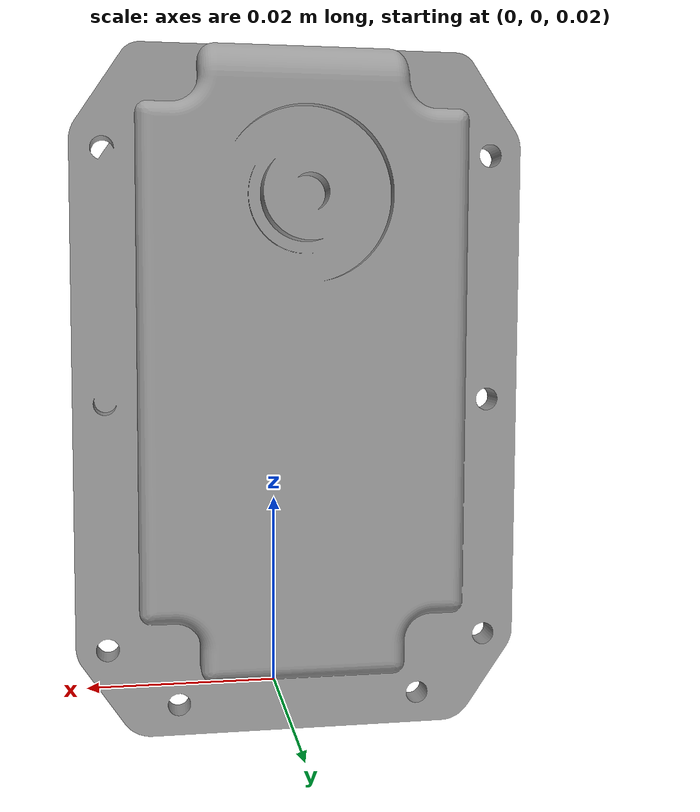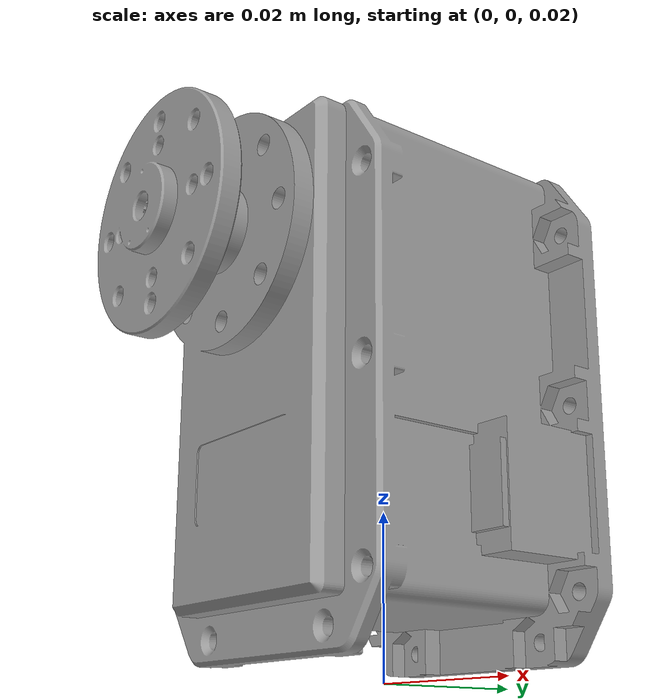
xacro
<?xml version="1.0"?>
<robot name="one_dynamixel_simulation" xmlns:xacro="http://ros.org/wiki/xacro">
  <xacro:include filename="$(find one_dynamixel_simulation)/urdf/MX64AR.xacro" />
  <xacro:include filename="$(find one_dynamixel_simulation)/urdf/MX64AR.ros2_control.xacro" />
  <link name="world"/>

  <xacro:one_dynamixel_simulation_ros2_control name="one_dynamixel_simulation_ros2_control" />
</robot>

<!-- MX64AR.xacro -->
<robot xmlns:ns0="http://ros.org/wiki/xacro">

<ns0:include filename="$(find one_dynamixel_simulation)/urdf/one_dynamixel_simulation.material.xacro" />

  <joint name="origin_to_link1" type="fixed">
    <parent link="world" />
    <child link="link1" />
    <axis xyz="0 0 1" />
    <origin xyz="0 0 0.07" rpy="0 0 0" />
  </joint>

  <link name="link1">
    <visual>
      <origin xyz="0 0 0" rpy="${pi/2} 0 0" />
      <geometry>
        <mesh filename="file://$(find one_dynamixel_simulation)/meshes/mx-64at_ar.stl" scale="0.001 0.001 0.001" />
      </geometry>
      <material name="grey" />
    </visual>

    <collision>
      <origin xyz="0 0 0" rpy="${pi/2} 0 0" />
      <geometry>
        <mesh filename="file://$(find one_dynamixel_simulation)/meshes/mx-64at_ar.stl" scale="0.001 0.001 0.001" />
      </geometry>
    </collision>

    <inertial>
      <origin xyz="0.1583e-03 -17.0242e-03 1.6784e-03" />
      <mass value="0.1295" />
      <inertia ixx="56457.58e-06" ixy="-652.34e-06" ixz="646.99e-06" iyy="29325.73e-06" iyz="-5892.95e-06" izz="45111.81e-06" />
    </inertial>
  </link>
  <gazebo reference="link1">
        <material>Gazebo/Grey</material>
  </gazebo>

  <joint name="joint1" type="revolute">
    <parent link="link1" />
    <child link="link2" />
    <origin xyz="0.0 -0.03 0.0" rpy="0 0 0" />
    <axis xyz="0 -1 0" />
    <limit velocity="6.597" effort="6.0" lower="-${pi}" upper="${pi}" />
    <dynamics damping="1.45" friction="1.45" />
  </joint>
  <gazebo reference="joint1">
      <implicitSpringDamper>true</implicitSpringDamper>
      <springStiffness>0.5</springStiffness>
      <springReference>0.01</springReference>
      <stopErp>0.7</stopErp>
      <stopCfm>0.45</stopCfm>
  </gazebo>

  <link name="link2">
    <visual>
      <origin xyz="0 0 0" rpy="${pi} 0 0" />
      <geometry>
        <mesh filename="file://$(find one_dynamixel_simulation)/meshes/hn05_n102.stl" scale="0.001 0.001 0.001" />
      </geometry>
      <material name="grey" />
    </visual>

    <collision>
      <origin xyz="0 0 0" rpy="${pi} 0 0" />
      <geometry>
        <mesh filename="file://$(find one_dynamixel_simulation)/meshes/hn05_n102.stl" scale="0.001 0.001 0.001" />
      </geometry>
    </collision>

     <inertial>
      <origin xyz="0 0 0" />
      <mass value="0.003" />
      <inertia ixx="0.000000588" ixy="0.0" ixz="0.0" iyy="0.0000002039" iyz="0.0" izz="0.000000588" />
    </inertial>
  </link>
  <gazebo reference="link2">
        <material>Gazebo/Grey</material>
  </gazebo>

</robot>
